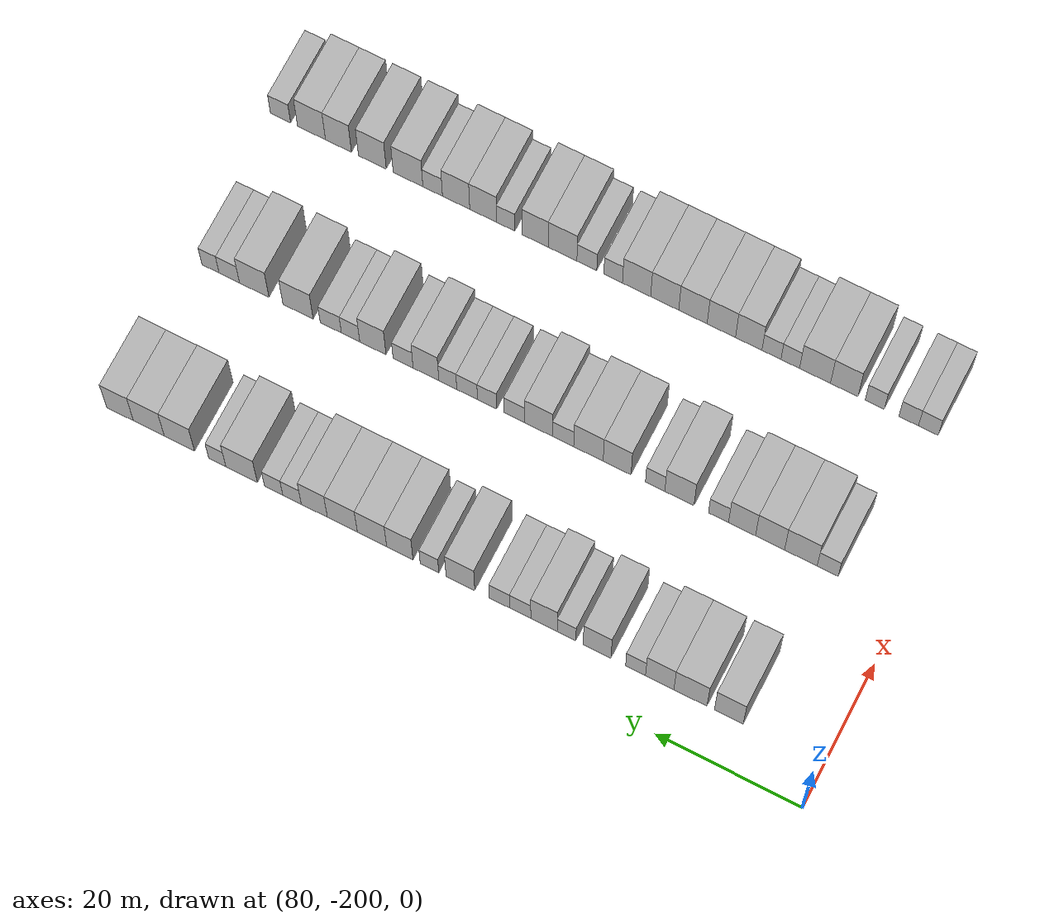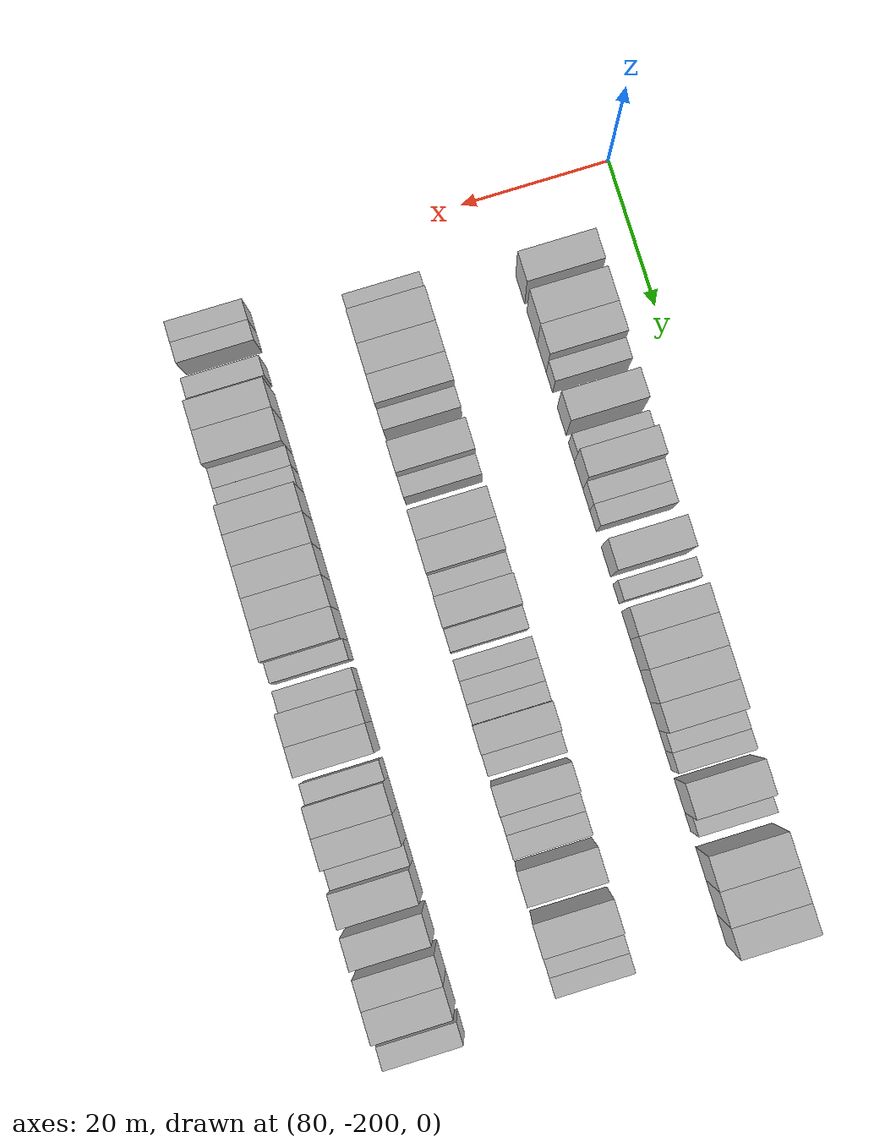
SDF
<sdf version="1.6">
 <world name="default">
  <model name="building_618">
   <static>1</static>
   <pose>91.0000 -187.0635 0 0.000000 0.000000 0.000000</pose>
   <link name="link">
    <pose>0 0 4.50 0 0 0</pose>
    <collision name="collision"><geometry><box><size>10.0000 3.8999 9.0000</size></box></geometry></collision>
    <visual name="visual">
     <cast_shadows>0</cast_shadows>
     <geometry><box><size>10.0000 3.8999 9.0000</size></box></geometry>
     <material>
      <script>
       <uri>model://HANNAS_wall/materials/scripts</uri>
       <uri>model://HANNAS_wall/materials/textures</uri>
       <name>vrc/HANNAS_wall</name>
      </script>
     </material>
    </visual>
   </link>
  </model>
  <model name="building_619">
   <static>1</static>
   <pose>91.0000 -181.8645 0 0.000000 0.000000 0.000000</pose>
   <link name="link">
    <pose>0 0 4.50 0 0 0</pose>
    <collision name="collision"><geometry><box><size>10.0000 4.4981 9.0000</size></box></geometry></collision>
    <visual name="visual">
     <cast_shadows>0</cast_shadows>
     <geometry><box><size>10.0000 4.4981 9.0000</size></box></geometry>
     <material>
      <script>
       <uri>model://HANNAS_wall/materials/scripts</uri>
       <uri>model://HANNAS_wall/materials/textures</uri>
       <name>vrc/HANNAS_wall</name>
      </script>
     </material>
    </visual>
   </link>
  </model>
  <model name="building_620">
   <static>1</static>
   <pose>91.0000 -177.6820 0 0.000000 0.000000 0.000000</pose>
   <link name="link">
    <pose>0 0 4.50 0 0 0</pose>
    <collision name="collision"><geometry><box><size>10.0000 3.8669 9.0000</size></box></geometry></collision>
    <visual name="visual">
     <cast_shadows>0</cast_shadows>
     <geometry><box><size>10.0000 3.8669 9.0000</size></box></geometry>
     <material>
      <script>
       <uri>model://HANNAS_wall/materials/scripts</uri>
       <uri>model://HANNAS_wall/materials/textures</uri>
       <name>vrc/HANNAS_wall</name>
      </script>
     </material>
    </visual>
   </link>
  </model>
  <model name="building_621">
   <static>1</static>
   <pose>91.0000 -174.3899 0 0.000000 0.000000 0.000000</pose>
   <link name="link">
    <pose>0 0 3.00 0 0 0</pose>
    <collision name="collision"><geometry><box><size>10.0000 2.7173 6.0000</size></box></geometry></collision>
    <visual name="visual">
     <cast_shadows>0</cast_shadows>
     <geometry><box><size>10.0000 2.7173 6.0000</size></box></geometry>
     <material>
      <script>
       <uri>model://HANNAS_wall/materials/scripts</uri>
       <uri>model://HANNAS_wall/materials/textures</uri>
       <name>vrc/HANNAS_wall</name>
      </script>
     </material>
    </visual>
   </link>
  </model>
  <model name="building_622">
   <static>1</static>
   <pose>91.0000 -169.1279 0 0.000000 0.000000 0.000000</pose>
   <link name="link">
    <pose>0 0 4.50 0 0 0</pose>
    <collision name="collision"><geometry><box><size>10.0000 3.8067 9.0000</size></box></geometry></collision>
    <visual name="visual">
     <cast_shadows>0</cast_shadows>
     <geometry><box><size>10.0000 3.8067 9.0000</size></box></geometry>
     <material>
      <script>
       <uri>model://HANNAS_wall/materials/scripts</uri>
       <uri>model://HANNAS_wall/materials/textures</uri>
       <name>vrc/HANNAS_wall</name>
      </script>
     </material>
    </visual>
   </link>
  </model>
  <model name="building_623">
   <static>1</static>
   <pose>91.0000 -164.9439 0 0.000000 0.000000 0.000000</pose>
   <link name="link">
    <pose>0 0 3.00 0 0 0</pose>
    <collision name="collision"><geometry><box><size>10.0000 2.5615 6.0000</size></box></geometry></collision>
    <visual name="visual">
     <cast_shadows>0</cast_shadows>
     <geometry><box><size>10.0000 2.5615 6.0000</size></box></geometry>
     <material>
      <script>
       <uri>model://HANNAS_wall/materials/scripts</uri>
       <uri>model://HANNAS_wall/materials/textures</uri>
       <name>vrc/HANNAS_wall</name>
      </script>
     </material>
    </visual>
   </link>
  </model>
  <model name="building_624">
   <static>1</static>
   <pose>91.0000 -161.8504 0 0.000000 0.000000 0.000000</pose>
   <link name="link">
    <pose>0 0 4.50 0 0 0</pose>
    <collision name="collision"><geometry><box><size>10.0000 3.6255 9.0000</size></box></geometry></collision>
    <visual name="visual">
     <cast_shadows>0</cast_shadows>
     <geometry><box><size>10.0000 3.6255 9.0000</size></box></geometry>
     <material>
      <script>
       <uri>model://HANNAS_wall/materials/scripts</uri>
       <uri>model://HANNAS_wall/materials/textures</uri>
       <name>vrc/HANNAS_wall</name>
      </script>
     </material>
    </visual>
   </link>
  </model>
  <model name="building_625">
   <static>1</static>
   <pose>91.0000 -158.5801 0 0.000000 0.000000 0.000000</pose>
   <link name="link">
    <pose>0 0 3.00 0 0 0</pose>
    <collision name="collision"><geometry><box><size>10.0000 2.9150 6.0000</size></box></geometry></collision>
    <visual name="visual">
     <cast_shadows>0</cast_shadows>
     <geometry><box><size>10.0000 2.9150 6.0000</size></box></geometry>
     <material>
      <script>
       <uri>model://HANNAS_wall/materials/scripts</uri>
       <uri>model://HANNAS_wall/materials/textures</uri>
       <name>vrc/HANNAS_wall</name>
      </script>
     </material>
    </visual>
   </link>
  </model>
  <model name="building_626">
   <static>1</static>
   <pose>91.0000 -155.7202 0 0.000000 0.000000 0.000000</pose>
   <link name="link">
    <pose>0 0 3.00 0 0 0</pose>
    <collision name="collision"><geometry><box><size>10.0000 2.8049 6.0000</size></box></geometry></collision>
    <visual name="visual">
     <cast_shadows>0</cast_shadows>
     <geometry><box><size>10.0000 2.8049 6.0000</size></box></geometry>
     <material>
      <script>
       <uri>model://HANNAS_wall/materials/scripts</uri>
       <uri>model://HANNAS_wall/materials/textures</uri>
       <name>vrc/HANNAS_wall</name>
      </script>
     </material>
    </visual>
   </link>
  </model>
  <model name="building_627">
   <static>1</static>
   <pose>91.0000 -150.3310 0 0.000000 0.000000 0.000000</pose>
   <link name="link">
    <pose>0 0 4.50 0 0 0</pose>
    <collision name="collision"><geometry><box><size>10.0000 3.9735 9.0000</size></box></geometry></collision>
    <visual name="visual">
     <cast_shadows>0</cast_shadows>
     <geometry><box><size>10.0000 3.9735 9.0000</size></box></geometry>
     <material>
      <script>
       <uri>model://HANNAS_wall/materials/scripts</uri>
       <uri>model://HANNAS_wall/materials/textures</uri>
       <name>vrc/HANNAS_wall</name>
      </script>
     </material>
    </visual>
   </link>
  </model>
  <model name="building_628">
   <static>1</static>
   <pose>91.0000 -146.0537 0 0.000000 0.000000 0.000000</pose>
   <link name="link">
    <pose>0 0 3.00 0 0 0</pose>
    <collision name="collision"><geometry><box><size>10.0000 2.5809 6.0000</size></box></geometry></collision>
    <visual name="visual">
     <cast_shadows>0</cast_shadows>
     <geometry><box><size>10.0000 2.5809 6.0000</size></box></geometry>
     <material>
      <script>
       <uri>model://HANNAS_wall/materials/scripts</uri>
       <uri>model://HANNAS_wall/materials/textures</uri>
       <name>vrc/HANNAS_wall</name>
      </script>
     </material>
    </visual>
   </link>
  </model>
  <model name="building_629">
   <static>1</static>
   <pose>91.0000 -141.9299 0 0.000000 0.000000 0.000000</pose>
   <link name="link">
    <pose>0 0 4.50 0 0 0</pose>
    <collision name="collision"><geometry><box><size>10.0000 3.6668 9.0000</size></box></geometry></collision>
    <visual name="visual">
     <cast_shadows>0</cast_shadows>
     <geometry><box><size>10.0000 3.6668 9.0000</size></box></geometry>
     <material>
      <script>
       <uri>model://HANNAS_wall/materials/scripts</uri>
       <uri>model://HANNAS_wall/materials/textures</uri>
       <name>vrc/HANNAS_wall</name>
      </script>
     </material>
    </visual>
   </link>
  </model>
  <model name="building_630">
   <static>1</static>
   <pose>91.0000 -138.0539 0 0.000000 0.000000 0.000000</pose>
   <link name="link">
    <pose>0 0 4.50 0 0 0</pose>
    <collision name="collision"><geometry><box><size>10.0000 4.0852 9.0000</size></box></geometry></collision>
    <visual name="visual">
     <cast_shadows>0</cast_shadows>
     <geometry><box><size>10.0000 4.0852 9.0000</size></box></geometry>
     <material>
      <script>
       <uri>model://HANNAS_wall/materials/scripts</uri>
       <uri>model://HANNAS_wall/materials/textures</uri>
       <name>vrc/HANNAS_wall</name>
      </script>
     </material>
    </visual>
   </link>
  </model>
  <model name="building_631">
   <static>1</static>
   <pose>91.0000 -133.9187 0 0.000000 0.000000 0.000000</pose>
   <link name="link">
    <pose>0 0 4.50 0 0 0</pose>
    <collision name="collision"><geometry><box><size>10.0000 4.1851 9.0000</size></box></geometry></collision>
    <visual name="visual">
     <cast_shadows>0</cast_shadows>
     <geometry><box><size>10.0000 4.1851 9.0000</size></box></geometry>
     <material>
      <script>
       <uri>model://HANNAS_wall/materials/scripts</uri>
       <uri>model://HANNAS_wall/materials/textures</uri>
       <name>vrc/HANNAS_wall</name>
      </script>
     </material>
    </visual>
   </link>
  </model>
  <model name="building_632">
   <static>1</static>
   <pose>91.0000 -130.0012 0 0.000000 0.000000 0.000000</pose>
   <link name="link">
    <pose>0 0 4.50 0 0 0</pose>
    <collision name="collision"><geometry><box><size>10.0000 3.6498 9.0000</size></box></geometry></collision>
    <visual name="visual">
     <cast_shadows>0</cast_shadows>
     <geometry><box><size>10.0000 3.6498 9.0000</size></box></geometry>
     <material>
      <script>
       <uri>model://HANNAS_wall/materials/scripts</uri>
       <uri>model://HANNAS_wall/materials/textures</uri>
       <name>vrc/HANNAS_wall</name>
      </script>
     </material>
    </visual>
   </link>
  </model>
  <model name="building_633">
   <static>1</static>
   <pose>91.0000 -126.8754 0 0.000000 0.000000 0.000000</pose>
   <link name="link">
    <pose>0 0 3.00 0 0 0</pose>
    <collision name="collision"><geometry><box><size>10.0000 2.6018 6.0000</size></box></geometry></collision>
    <visual name="visual">
     <cast_shadows>0</cast_shadows>
     <geometry><box><size>10.0000 2.6018 6.0000</size></box></geometry>
     <material>
      <script>
       <uri>model://HANNAS_wall/materials/scripts</uri>
       <uri>model://HANNAS_wall/materials/textures</uri>
       <name>vrc/HANNAS_wall</name>
      </script>
     </material>
    </visual>
   </link>
  </model>
  <model name="building_634">
   <static>1</static>
   <pose>91.0000 -124.2934 0 0.000000 0.000000 0.000000</pose>
   <link name="link">
    <pose>0 0 3.00 0 0 0</pose>
    <collision name="collision"><geometry><box><size>10.0000 2.5622 6.0000</size></box></geometry></collision>
    <visual name="visual">
     <cast_shadows>0</cast_shadows>
     <geometry><box><size>10.0000 2.5622 6.0000</size></box></geometry>
     <material>
      <script>
       <uri>model://HANNAS_wall/materials/scripts</uri>
       <uri>model://HANNAS_wall/materials/textures</uri>
       <name>vrc/HANNAS_wall</name>
      </script>
     </material>
    </visual>
   </link>
  </model>
  <model name="building_635">
   <static>1</static>
   <pose>91.0000 -119.7942 0 0.000000 0.000000 0.000000</pose>
   <link name="link">
    <pose>0 0 4.50 0 0 0</pose>
    <collision name="collision"><geometry><box><size>10.0000 4.4363 9.0000</size></box></geometry></collision>
    <visual name="visual">
     <cast_shadows>0</cast_shadows>
     <geometry><box><size>10.0000 4.4363 9.0000</size></box></geometry>
     <material>
      <script>
       <uri>model://HANNAS_wall/materials/scripts</uri>
       <uri>model://HANNAS_wall/materials/textures</uri>
       <name>vrc/HANNAS_wall</name>
      </script>
     </material>
    </visual>
   </link>
  </model>
  <model name="building_636">
   <static>1</static>
   <pose>91.0000 -116.3647 0 0.000000 0.000000 0.000000</pose>
   <link name="link">
    <pose>0 0 3.00 0 0 0</pose>
    <collision name="collision"><geometry><box><size>10.0000 2.4227 6.0000</size></box></geometry></collision>
    <visual name="visual">
     <cast_shadows>0</cast_shadows>
     <geometry><box><size>10.0000 2.4227 6.0000</size></box></geometry>
     <material>
      <script>
       <uri>model://HANNAS_wall/materials/scripts</uri>
       <uri>model://HANNAS_wall/materials/textures</uri>
       <name>vrc/HANNAS_wall</name>
      </script>
     </material>
    </visual>
   </link>
  </model>
  <model name="building_637">
   <static>1</static>
   <pose>91.0000 -111.0157 0 0.000000 0.000000 0.000000</pose>
   <link name="link">
    <pose>0 0 4.50 0 0 0</pose>
    <collision name="collision"><geometry><box><size>10.0000 4.2753 9.0000</size></box></geometry></collision>
    <visual name="visual">
     <cast_shadows>0</cast_shadows>
     <geometry><box><size>10.0000 4.2753 9.0000</size></box></geometry>
     <material>
      <script>
       <uri>model://HANNAS_wall/materials/scripts</uri>
       <uri>model://HANNAS_wall/materials/textures</uri>
       <name>vrc/HANNAS_wall</name>
      </script>
     </material>
    </visual>
   </link>
  </model>
  <model name="building_638">
   <static>1</static>
   <pose>91.0000 -106.6909 0 0.000000 0.000000 0.000000</pose>
   <link name="link">
    <pose>0 0 4.50 0 0 0</pose>
    <collision name="collision"><geometry><box><size>10.0000 4.3743 9.0000</size></box></geometry></collision>
    <visual name="visual">
     <cast_shadows>0</cast_shadows>
     <geometry><box><size>10.0000 4.3743 9.0000</size></box></geometry>
     <material>
      <script>
       <uri>model://HANNAS_wall/materials/scripts</uri>
       <uri>model://HANNAS_wall/materials/textures</uri>
       <name>vrc/HANNAS_wall</name>
      </script>
     </material>
    </visual>
   </link>
  </model>
  <model name="building_639">
   <static>1</static>
   <pose>91.0000 -102.5994 0 0.000000 0.000000 0.000000</pose>
   <link name="link">
    <pose>0 0 4.50 0 0 0</pose>
    <collision name="collision"><geometry><box><size>10.0000 3.8086 9.0000</size></box></geometry></collision>
    <visual name="visual">
     <cast_shadows>0</cast_shadows>
     <geometry><box><size>10.0000 3.8086 9.0000</size></box></geometry>
     <material>
      <script>
       <uri>model://HANNAS_wall/materials/scripts</uri>
       <uri>model://HANNAS_wall/materials/textures</uri>
       <name>vrc/HANNAS_wall</name>
      </script>
     </material>
    </visual>
   </link>
  </model>
  <model name="building_803">
   <static>1</static>
   <pose>113.0000 -189.7195 0 0.000000 0.000000 0.000000</pose>
   <link name="link">
    <pose>0 0 3.00 0 0 0</pose>
    <collision name="collision"><geometry><box><size>10.0000 2.8651 6.0000</size></box></geometry></collision>
    <visual name="visual">
     <cast_shadows>0</cast_shadows>
     <geometry><box><size>10.0000 2.8651 6.0000</size></box></geometry>
     <material>
      <script>
       <uri>model://HANNAS_wall/materials/scripts</uri>
       <uri>model://HANNAS_wall/materials/textures</uri>
       <name>vrc/HANNAS_wall</name>
      </script>
     </material>
    </visual>
   </link>
  </model>
  <model name="building_804">
   <static>1</static>
   <pose>113.0000 -186.0520 0 0.000000 0.000000 0.000000</pose>
   <link name="link">
    <pose>0 0 4.50 0 0 0</pose>
    <collision name="collision"><geometry><box><size>10.0000 4.4698 9.0000</size></box></geometry></collision>
    <visual name="visual">
     <cast_shadows>0</cast_shadows>
     <geometry><box><size>10.0000 4.4698 9.0000</size></box></geometry>
     <material>
      <script>
       <uri>model://HANNAS_wall/materials/scripts</uri>
       <uri>model://HANNAS_wall/materials/textures</uri>
       <name>vrc/HANNAS_wall</name>
      </script>
     </material>
    </visual>
   </link>
  </model>
  <model name="building_805">
   <static>1</static>
   <pose>113.0000 -181.8278 0 0.000000 0.000000 0.000000</pose>
   <link name="link">
    <pose>0 0 4.50 0 0 0</pose>
    <collision name="collision"><geometry><box><size>10.0000 3.9787 9.0000</size></box></geometry></collision>
    <visual name="visual">
     <cast_shadows>0</cast_shadows>
     <geometry><box><size>10.0000 3.9787 9.0000</size></box></geometry>
     <material>
      <script>
       <uri>model://HANNAS_wall/materials/scripts</uri>
       <uri>model://HANNAS_wall/materials/textures</uri>
       <name>vrc/HANNAS_wall</name>
      </script>
     </material>
    </visual>
   </link>
  </model>
  <model name="building_806">
   <static>1</static>
   <pose>113.0000 -177.9813 0 0.000000 0.000000 0.000000</pose>
   <link name="link">
    <pose>0 0 4.50 0 0 0</pose>
    <collision name="collision"><geometry><box><size>10.0000 3.7142 9.0000</size></box></geometry></collision>
    <visual name="visual">
     <cast_shadows>0</cast_shadows>
     <geometry><box><size>10.0000 3.7142 9.0000</size></box></geometry>
     <material>
      <script>
       <uri>model://HANNAS_wall/materials/scripts</uri>
       <uri>model://HANNAS_wall/materials/textures</uri>
       <name>vrc/HANNAS_wall</name>
      </script>
     </material>
    </visual>
   </link>
  </model>
  <model name="building_807">
   <static>1</static>
   <pose>113.0000 -174.7506 0 0.000000 0.000000 0.000000</pose>
   <link name="link">
    <pose>0 0 3.00 0 0 0</pose>
    <collision name="collision"><geometry><box><size>10.0000 2.7471 6.0000</size></box></geometry></collision>
    <visual name="visual">
     <cast_shadows>0</cast_shadows>
     <geometry><box><size>10.0000 2.7471 6.0000</size></box></geometry>
     <material>
      <script>
       <uri>model://HANNAS_wall/materials/scripts</uri>
       <uri>model://HANNAS_wall/materials/textures</uri>
       <name>vrc/HANNAS_wall</name>
      </script>
     </material>
    </visual>
   </link>
  </model>
  <model name="building_808">
   <static>1</static>
   <pose>113.0000 -169.3579 0 0.000000 0.000000 0.000000</pose>
   <link name="link">
    <pose>0 0 4.50 0 0 0</pose>
    <collision name="collision"><geometry><box><size>10.0000 4.0383 9.0000</size></box></geometry></collision>
    <visual name="visual">
     <cast_shadows>0</cast_shadows>
     <geometry><box><size>10.0000 4.0383 9.0000</size></box></geometry>
     <material>
      <script>
       <uri>model://HANNAS_wall/materials/scripts</uri>
       <uri>model://HANNAS_wall/materials/textures</uri>
       <name>vrc/HANNAS_wall</name>
      </script>
     </material>
    </visual>
   </link>
  </model>
  <model name="building_809">
   <static>1</static>
   <pose>113.0000 -166.0016 0 0.000000 0.000000 0.000000</pose>
   <link name="link">
    <pose>0 0 3.00 0 0 0</pose>
    <collision name="collision"><geometry><box><size>10.0000 2.6744 6.0000</size></box></geometry></collision>
    <visual name="visual">
     <cast_shadows>0</cast_shadows>
     <geometry><box><size>10.0000 2.6744 6.0000</size></box></geometry>
     <material>
      <script>
       <uri>model://HANNAS_wall/materials/scripts</uri>
       <uri>model://HANNAS_wall/materials/textures</uri>
       <name>vrc/HANNAS_wall</name>
      </script>
     </material>
    </visual>
   </link>
  </model>
  <model name="building_810">
   <static>1</static>
   <pose>113.0000 -160.7313 0 0.000000 0.000000 0.000000</pose>
   <link name="link">
    <pose>0 0 4.50 0 0 0</pose>
    <collision name="collision"><geometry><box><size>10.0000 3.8661 9.0000</size></box></geometry></collision>
    <visual name="visual">
     <cast_shadows>0</cast_shadows>
     <geometry><box><size>10.0000 3.8661 9.0000</size></box></geometry>
     <material>
      <script>
       <uri>model://HANNAS_wall/materials/scripts</uri>
       <uri>model://HANNAS_wall/materials/textures</uri>
       <name>vrc/HANNAS_wall</name>
      </script>
     </material>
    </visual>
   </link>
  </model>
  <model name="building_811">
   <static>1</static>
   <pose>113.0000 -156.7494 0 0.000000 0.000000 0.000000</pose>
   <link name="link">
    <pose>0 0 4.50 0 0 0</pose>
    <collision name="collision"><geometry><box><size>10.0000 4.0977 9.0000</size></box></geometry></collision>
    <visual name="visual">
     <cast_shadows>0</cast_shadows>
     <geometry><box><size>10.0000 4.0977 9.0000</size></box></geometry>
     <material>
      <script>
       <uri>model://HANNAS_wall/materials/scripts</uri>
       <uri>model://HANNAS_wall/materials/textures</uri>
       <name>vrc/HANNAS_wall</name>
      </script>
     </material>
    </visual>
   </link>
  </model>
  <model name="building_812">
   <static>1</static>
   <pose>113.0000 -153.2311 0 0.000000 0.000000 0.000000</pose>
   <link name="link">
    <pose>0 0 3.00 0 0 0</pose>
    <collision name="collision"><geometry><box><size>10.0000 2.9390 6.0000</size></box></geometry></collision>
    <visual name="visual">
     <cast_shadows>0</cast_shadows>
     <geometry><box><size>10.0000 2.9390 6.0000</size></box></geometry>
     <material>
      <script>
       <uri>model://HANNAS_wall/materials/scripts</uri>
       <uri>model://HANNAS_wall/materials/textures</uri>
       <name>vrc/HANNAS_wall</name>
      </script>
     </material>
    </visual>
   </link>
  </model>
  <model name="building_813">
   <static>1</static>
   <pose>113.0000 -149.8077 0 0.000000 0.000000 0.000000</pose>
   <link name="link">
    <pose>0 0 4.50 0 0 0</pose>
    <collision name="collision"><geometry><box><size>10.0000 3.9078 9.0000</size></box></geometry></collision>
    <visual name="visual">
     <cast_shadows>0</cast_shadows>
     <geometry><box><size>10.0000 3.9078 9.0000</size></box></geometry>
     <material>
      <script>
       <uri>model://HANNAS_wall/materials/scripts</uri>
       <uri>model://HANNAS_wall/materials/textures</uri>
       <name>vrc/HANNAS_wall</name>
      </script>
     </material>
    </visual>
   </link>
  </model>
  <model name="building_814">
   <static>1</static>
   <pose>113.0000 -146.4039 0 0.000000 0.000000 0.000000</pose>
   <link name="link">
    <pose>0 0 3.00 0 0 0</pose>
    <collision name="collision"><geometry><box><size>10.0000 2.8996 6.0000</size></box></geometry></collision>
    <visual name="visual">
     <cast_shadows>0</cast_shadows>
     <geometry><box><size>10.0000 2.8996 6.0000</size></box></geometry>
     <material>
      <script>
       <uri>model://HANNAS_wall/materials/scripts</uri>
       <uri>model://HANNAS_wall/materials/textures</uri>
       <name>vrc/HANNAS_wall</name>
      </script>
     </material>
    </visual>
   </link>
  </model>
  <model name="building_815">
   <static>1</static>
   <pose>113.0000 -142.6046 0 0.000000 0.000000 0.000000</pose>
   <link name="link">
    <pose>0 0 3.00 0 0 0</pose>
    <collision name="collision"><geometry><box><size>10.0000 2.6990 6.0000</size></box></geometry></collision>
    <visual name="visual">
     <cast_shadows>0</cast_shadows>
     <geometry><box><size>10.0000 2.6990 6.0000</size></box></geometry>
     <material>
      <script>
       <uri>model://HANNAS_wall/materials/scripts</uri>
       <uri>model://HANNAS_wall/materials/textures</uri>
       <name>vrc/HANNAS_wall</name>
      </script>
     </material>
    </visual>
   </link>
  </model>
  <model name="building_816">
   <static>1</static>
   <pose>113.0000 -139.7965 0 0.000000 0.000000 0.000000</pose>
   <link name="link">
    <pose>0 0 3.00 0 0 0</pose>
    <collision name="collision"><geometry><box><size>10.0000 2.9173 6.0000</size></box></geometry></collision>
    <visual name="visual">
     <cast_shadows>0</cast_shadows>
     <geometry><box><size>10.0000 2.9173 6.0000</size></box></geometry>
     <material>
      <script>
       <uri>model://HANNAS_wall/materials/scripts</uri>
       <uri>model://HANNAS_wall/materials/textures</uri>
       <name>vrc/HANNAS_wall</name>
      </script>
     </material>
    </visual>
   </link>
  </model>
  <model name="building_817">
   <static>1</static>
   <pose>113.0000 -137.0816 0 0.000000 0.000000 0.000000</pose>
   <link name="link">
    <pose>0 0 3.00 0 0 0</pose>
    <collision name="collision"><geometry><box><size>10.0000 2.5125 6.0000</size></box></geometry></collision>
    <visual name="visual">
     <cast_shadows>0</cast_shadows>
     <geometry><box><size>10.0000 2.5125 6.0000</size></box></geometry>
     <material>
      <script>
       <uri>model://HANNAS_wall/materials/scripts</uri>
       <uri>model://HANNAS_wall/materials/textures</uri>
       <name>vrc/HANNAS_wall</name>
      </script>
     </material>
    </visual>
   </link>
  </model>
  <model name="building_818">
   <static>1</static>
   <pose>113.0000 -134.0122 0 0.000000 0.000000 0.000000</pose>
   <link name="link">
    <pose>0 0 4.50 0 0 0</pose>
    <collision name="collision"><geometry><box><size>10.0000 3.6263 9.0000</size></box></geometry></collision>
    <visual name="visual">
     <cast_shadows>0</cast_shadows>
     <geometry><box><size>10.0000 3.6263 9.0000</size></box></geometry>
     <material>
      <script>
       <uri>model://HANNAS_wall/materials/scripts</uri>
       <uri>model://HANNAS_wall/materials/textures</uri>
       <name>vrc/HANNAS_wall</name>
      </script>
     </material>
    </visual>
   </link>
  </model>
  <model name="building_819">
   <static>1</static>
   <pose>113.0000 -130.7864 0 0.000000 0.000000 0.000000</pose>
   <link name="link">
    <pose>0 0 3.00 0 0 0</pose>
    <collision name="collision"><geometry><box><size>10.0000 2.8252 6.0000</size></box></geometry></collision>
    <visual name="visual">
     <cast_shadows>0</cast_shadows>
     <geometry><box><size>10.0000 2.8252 6.0000</size></box></geometry>
     <material>
      <script>
       <uri>model://HANNAS_wall/materials/scripts</uri>
       <uri>model://HANNAS_wall/materials/textures</uri>
       <name>vrc/HANNAS_wall</name>
      </script>
     </material>
    </visual>
   </link>
  </model>
  <model name="building_820">
   <static>1</static>
   <pose>113.0000 -126.5130 0 0.000000 0.000000 0.000000</pose>
   <link name="link">
    <pose>0 0 4.50 0 0 0</pose>
    <collision name="collision"><geometry><box><size>10.0000 3.7215 9.0000</size></box></geometry></collision>
    <visual name="visual">
     <cast_shadows>0</cast_shadows>
     <geometry><box><size>10.0000 3.7215 9.0000</size></box></geometry>
     <material>
      <script>
       <uri>model://HANNAS_wall/materials/scripts</uri>
       <uri>model://HANNAS_wall/materials/textures</uri>
       <name>vrc/HANNAS_wall</name>
      </script>
     </material>
    </visual>
   </link>
  </model>
  <model name="building_821">
   <static>1</static>
   <pose>113.0000 -123.3494 0 0.000000 0.000000 0.000000</pose>
   <link name="link">
    <pose>0 0 3.00 0 0 0</pose>
    <collision name="collision"><geometry><box><size>10.0000 2.6057 6.0000</size></box></geometry></collision>
    <visual name="visual">
     <cast_shadows>0</cast_shadows>
     <geometry><box><size>10.0000 2.6057 6.0000</size></box></geometry>
     <material>
      <script>
       <uri>model://HANNAS_wall/materials/scripts</uri>
       <uri>model://HANNAS_wall/materials/textures</uri>
       <name>vrc/HANNAS_wall</name>
      </script>
     </material>
    </visual>
   </link>
  </model>
  <model name="building_822">
   <static>1</static>
   <pose>113.0000 -120.5483 0 0.000000 0.000000 0.000000</pose>
   <link name="link">
    <pose>0 0 3.00 0 0 0</pose>
    <collision name="collision"><geometry><box><size>10.0000 2.9965 6.0000</size></box></geometry></collision>
    <visual name="visual">
     <cast_shadows>0</cast_shadows>
     <geometry><box><size>10.0000 2.9965 6.0000</size></box></geometry>
     <material>
      <script>
       <uri>model://HANNAS_wall/materials/scripts</uri>
       <uri>model://HANNAS_wall/materials/textures</uri>
       <name>vrc/HANNAS_wall</name>
      </script>
     </material>
    </visual>
   </link>
  </model>
  <model name="building_823">
   <static>1</static>
   <pose>113.0000 -115.8959 0 0.000000 0.000000 0.000000</pose>
   <link name="link">
    <pose>0 0 4.50 0 0 0</pose>
    <collision name="collision"><geometry><box><size>10.0000 4.3082 9.0000</size></box></geometry></collision>
    <visual name="visual">
     <cast_shadows>0</cast_shadows>
     <geometry><box><size>10.0000 4.3082 9.0000</size></box></geometry>
     <material>
      <script>
       <uri>model://HANNAS_wall/materials/scripts</uri>
       <uri>model://HANNAS_wall/materials/textures</uri>
       <name>vrc/HANNAS_wall</name>
      </script>
     </material>
    </visual>
   </link>
  </model>
  <model name="building_824">
   <static>1</static>
   <pose>113.0000 -109.6327 0 0.000000 0.000000 0.000000</pose>
   <link name="link">
    <pose>0 0 4.50 0 0 0</pose>
    <collision name="collision"><geometry><box><size>10.0000 4.2183 9.0000</size></box></geometry></collision>
    <visual name="visual">
     <cast_shadows>0</cast_shadows>
     <geometry><box><size>10.0000 4.2183 9.0000</size></box></geometry>
     <material>
      <script>
       <uri>model://HANNAS_wall/materials/scripts</uri>
       <uri>model://HANNAS_wall/materials/textures</uri>
       <name>vrc/HANNAS_wall</name>
      </script>
     </material>
    </visual>
   </link>
  </model>
  <model name="building_825">
   <static>1</static>
   <pose>113.0000 -106.0621 0 0.000000 0.000000 0.000000</pose>
   <link name="link">
    <pose>0 0 3.00 0 0 0</pose>
    <collision name="collision"><geometry><box><size>10.0000 2.9229 6.0000</size></box></geometry></collision>
    <visual name="visual">
     <cast_shadows>0</cast_shadows>
     <geometry><box><size>10.0000 2.9229 6.0000</size></box></geometry>
     <material>
      <script>
       <uri>model://HANNAS_wall/materials/scripts</uri>
       <uri>model://HANNAS_wall/materials/textures</uri>
       <name>vrc/HANNAS_wall</name>
      </script>
     </material>
    </visual>
   </link>
  </model>
  <model name="building_826">
   <static>1</static>
   <pose>113.0000 -103.3707 0 0.000000 0.000000 0.000000</pose>
   <link name="link">
    <pose>0 0 3.00 0 0 0</pose>
    <collision name="collision"><geometry><box><size>10.0000 2.4599 6.0000</size></box></geometry></collision>
    <visual name="visual">
     <cast_shadows>0</cast_shadows>
     <geometry><box><size>10.0000 2.4599 6.0000</size></box></geometry>
     <material>
      <script>
       <uri>model://HANNAS_wall/materials/scripts</uri>
       <uri>model://HANNAS_wall/materials/textures</uri>
       <name>vrc/HANNAS_wall</name>
      </script>
     </material>
    </visual>
   </link>
  </model>
  <model name="building_990">
   <static>1</static>
   <pose>135.0000 -192.9317 0 0.000000 0.000000 0.000000</pose>
   <link name="link">
    <pose>0 0 3.00 0 0 0</pose>
    <collision name="collision"><geometry><box><size>10.0000 2.7180 6.0000</size></box></geometry></collision>
    <visual name="visual">
     <cast_shadows>0</cast_shadows>
     <geometry><box><size>10.0000 2.7180 6.0000</size></box></geometry>
     <material>
      <script>
       <uri>model://HANNAS_wall/materials/scripts</uri>
       <uri>model://HANNAS_wall/materials/textures</uri>
       <name>vrc/HANNAS_wall</name>
      </script>
     </material>
    </visual>
   </link>
  </model>
  <model name="building_991">
   <static>1</static>
   <pose>135.0000 -190.2215 0 0.000000 0.000000 0.000000</pose>
   <link name="link">
    <pose>0 0 3.00 0 0 0</pose>
    <collision name="collision"><geometry><box><size>10.0000 2.7025 6.0000</size></box></geometry></collision>
    <visual name="visual">
     <cast_shadows>0</cast_shadows>
     <geometry><box><size>10.0000 2.7025 6.0000</size></box></geometry>
     <material>
      <script>
       <uri>model://HANNAS_wall/materials/scripts</uri>
       <uri>model://HANNAS_wall/materials/textures</uri>
       <name>vrc/HANNAS_wall</name>
      </script>
     </material>
    </visual>
   </link>
  </model>
  <model name="building_992">
   <static>1</static>
   <pose>135.0000 -185.5479 0 0.000000 0.000000 0.000000</pose>
   <link name="link">
    <pose>0 0 3.00 0 0 0</pose>
    <collision name="collision"><geometry><box><size>10.0000 2.6447 6.0000</size></box></geometry></collision>
    <visual name="visual">
     <cast_shadows>0</cast_shadows>
     <geometry><box><size>10.0000 2.6447 6.0000</size></box></geometry>
     <material>
      <script>
       <uri>model://HANNAS_wall/materials/scripts</uri>
       <uri>model://HANNAS_wall/materials/textures</uri>
       <name>vrc/HANNAS_wall</name>
      </script>
     </material>
    </visual>
   </link>
  </model>
  <model name="building_993">
   <static>1</static>
   <pose>135.0000 -181.3235 0 0.000000 0.000000 0.000000</pose>
   <link name="link">
    <pose>0 0 4.50 0 0 0</pose>
    <collision name="collision"><geometry><box><size>10.0000 3.8039 9.0000</size></box></geometry></collision>
    <visual name="visual">
     <cast_shadows>0</cast_shadows>
     <geometry><box><size>10.0000 3.8039 9.0000</size></box></geometry>
     <material>
      <script>
       <uri>model://HANNAS_wall/materials/scripts</uri>
       <uri>model://HANNAS_wall/materials/textures</uri>
       <name>vrc/HANNAS_wall</name>
      </script>
     </material>
    </visual>
   </link>
  </model>
  <model name="building_994">
   <static>1</static>
   <pose>135.0000 -177.2751 0 0.000000 0.000000 0.000000</pose>
   <link name="link">
    <pose>0 0 4.50 0 0 0</pose>
    <collision name="collision"><geometry><box><size>10.0000 4.2930 9.0000</size></box></geometry></collision>
    <visual name="visual">
     <cast_shadows>0</cast_shadows>
     <geometry><box><size>10.0000 4.2930 9.0000</size></box></geometry>
     <material>
      <script>
       <uri>model://HANNAS_wall/materials/scripts</uri>
       <uri>model://HANNAS_wall/materials/textures</uri>
       <name>vrc/HANNAS_wall</name>
      </script>
     </material>
    </visual>
   </link>
  </model>
  <model name="building_995">
   <static>1</static>
   <pose>135.0000 -173.8377 0 0.000000 0.000000 0.000000</pose>
   <link name="link">
    <pose>0 0 3.00 0 0 0</pose>
    <collision name="collision"><geometry><box><size>10.0000 2.5818 6.0000</size></box></geometry></collision>
    <visual name="visual">
     <cast_shadows>0</cast_shadows>
     <geometry><box><size>10.0000 2.5818 6.0000</size></box></geometry>
     <material>
      <script>
       <uri>model://HANNAS_wall/materials/scripts</uri>
       <uri>model://HANNAS_wall/materials/textures</uri>
       <name>vrc/HANNAS_wall</name>
      </script>
     </material>
    </visual>
   </link>
  </model>
  <model name="building_996">
   <static>1</static>
   <pose>135.0000 -171.2236 0 0.000000 0.000000 0.000000</pose>
   <link name="link">
    <pose>0 0 3.00 0 0 0</pose>
    <collision name="collision"><geometry><box><size>10.0000 2.6465 6.0000</size></box></geometry></collision>
    <visual name="visual">
     <cast_shadows>0</cast_shadows>
     <geometry><box><size>10.0000 2.6465 6.0000</size></box></geometry>
     <material>
      <script>
       <uri>model://HANNAS_wall/materials/scripts</uri>
       <uri>model://HANNAS_wall/materials/textures</uri>
       <name>vrc/HANNAS_wall</name>
      </script>
     </material>
    </visual>
   </link>
  </model>
  <model name="building_997">
   <static>1</static>
   <pose>135.0000 -168.0565 0 0.000000 0.000000 0.000000</pose>
   <link name="link">
    <pose>0 0 4.50 0 0 0</pose>
    <collision name="collision"><geometry><box><size>10.0000 3.6878 9.0000</size></box></geometry></collision>
    <visual name="visual">
     <cast_shadows>0</cast_shadows>
     <geometry><box><size>10.0000 3.6878 9.0000</size></box></geometry>
     <material>
      <script>
       <uri>model://HANNAS_wall/materials/scripts</uri>
       <uri>model://HANNAS_wall/materials/textures</uri>
       <name>vrc/HANNAS_wall</name>
      </script>
     </material>
    </visual>
   </link>
  </model>
  <model name="building_998">
   <static>1</static>
   <pose>135.0000 -164.2293 0 0.000000 0.000000 0.000000</pose>
   <link name="link">
    <pose>0 0 4.50 0 0 0</pose>
    <collision name="collision"><geometry><box><size>10.0000 3.9666 9.0000</size></box></geometry></collision>
    <visual name="visual">
     <cast_shadows>0</cast_shadows>
     <geometry><box><size>10.0000 3.9666 9.0000</size></box></geometry>
     <material>
      <script>
       <uri>model://HANNAS_wall/materials/scripts</uri>
       <uri>model://HANNAS_wall/materials/textures</uri>
       <name>vrc/HANNAS_wall</name>
      </script>
     </material>
    </visual>
   </link>
  </model>
  <model name="building_999">
   <static>1</static>
   <pose>135.0000 -160.2557 0 0.000000 0.000000 0.000000</pose>
   <link name="link">
    <pose>0 0 4.50 0 0 0</pose>
    <collision name="collision"><geometry><box><size>10.0000 3.9806 9.0000</size></box></geometry></collision>
    <visual name="visual">
     <cast_shadows>0</cast_shadows>
     <geometry><box><size>10.0000 3.9806 9.0000</size></box></geometry>
     <material>
      <script>
       <uri>model://HANNAS_wall/materials/scripts</uri>
       <uri>model://HANNAS_wall/materials/textures</uri>
       <name>vrc/HANNAS_wall</name>
      </script>
     </material>
    </visual>
   </link>
  </model>
  <model name="building_1000">
   <static>1</static>
   <pose>135.0000 -156.2920 0 0.000000 0.000000 0.000000</pose>
   <link name="link">
    <pose>0 0 4.50 0 0 0</pose>
    <collision name="collision"><geometry><box><size>10.0000 3.9469 9.0000</size></box></geometry></collision>
    <visual name="visual">
     <cast_shadows>0</cast_shadows>
     <geometry><box><size>10.0000 3.9469 9.0000</size></box></geometry>
     <material>
      <script>
       <uri>model://HANNAS_wall/materials/scripts</uri>
       <uri>model://HANNAS_wall/materials/textures</uri>
       <name>vrc/HANNAS_wall</name>
      </script>
     </material>
    </visual>
   </link>
  </model>
  <model name="building_1001">
   <static>1</static>
   <pose>135.0000 -152.3364 0 0.000000 0.000000 0.000000</pose>
   <link name="link">
    <pose>0 0 4.50 0 0 0</pose>
    <collision name="collision"><geometry><box><size>10.0000 3.9642 9.0000</size></box></geometry></collision>
    <visual name="visual">
     <cast_shadows>0</cast_shadows>
     <geometry><box><size>10.0000 3.9642 9.0000</size></box></geometry>
     <material>
      <script>
       <uri>model://HANNAS_wall/materials/scripts</uri>
       <uri>model://HANNAS_wall/materials/textures</uri>
       <name>vrc/HANNAS_wall</name>
      </script>
     </material>
    </visual>
   </link>
  </model>
  <model name="building_1002">
   <static>1</static>
   <pose>135.0000 -149.0439 0 0.000000 0.000000 0.000000</pose>
   <link name="link">
    <pose>0 0 3.00 0 0 0</pose>
    <collision name="collision"><geometry><box><size>10.0000 2.6208 6.0000</size></box></geometry></collision>
    <visual name="visual">
     <cast_shadows>0</cast_shadows>
     <geometry><box><size>10.0000 2.6208 6.0000</size></box></geometry>
     <material>
      <script>
       <uri>model://HANNAS_wall/materials/scripts</uri>
       <uri>model://HANNAS_wall/materials/textures</uri>
       <name>vrc/HANNAS_wall</name>
      </script>
     </material>
    </visual>
   </link>
  </model>
  <model name="building_1003">
   <static>1</static>
   <pose>135.0000 -145.3292 0 0.000000 0.000000 0.000000</pose>
   <link name="link">
    <pose>0 0 3.00 0 0 0</pose>
    <collision name="collision"><geometry><box><size>10.0000 2.8086 6.0000</size></box></geometry></collision>
    <visual name="visual">
     <cast_shadows>0</cast_shadows>
     <geometry><box><size>10.0000 2.8086 6.0000</size></box></geometry>
     <material>
      <script>
       <uri>model://HANNAS_wall/materials/scripts</uri>
       <uri>model://HANNAS_wall/materials/textures</uri>
       <name>vrc/HANNAS_wall</name>
      </script>
     </material>
    </visual>
   </link>
  </model>
  <model name="building_1004">
   <static>1</static>
   <pose>135.0000 -141.8873 0 0.000000 0.000000 0.000000</pose>
   <link name="link">
    <pose>0 0 4.50 0 0 0</pose>
    <collision name="collision"><geometry><box><size>10.0000 4.0752 9.0000</size></box></geometry></collision>
    <visual name="visual">
     <cast_shadows>0</cast_shadows>
     <geometry><box><size>10.0000 4.0752 9.0000</size></box></geometry>
     <material>
      <script>
       <uri>model://HANNAS_wall/materials/scripts</uri>
       <uri>model://HANNAS_wall/materials/textures</uri>
       <name>vrc/HANNAS_wall</name>
      </script>
     </material>
    </visual>
   </link>
  </model>
  <model name="building_1005">
   <static>1</static>
   <pose>135.0000 -137.9988 0 0.000000 0.000000 0.000000</pose>
   <link name="link">
    <pose>0 0 4.50 0 0 0</pose>
    <collision name="collision"><geometry><box><size>10.0000 3.7019 9.0000</size></box></geometry></collision>
    <visual name="visual">
     <cast_shadows>0</cast_shadows>
     <geometry><box><size>10.0000 3.7019 9.0000</size></box></geometry>
     <material>
      <script>
       <uri>model://HANNAS_wall/materials/scripts</uri>
       <uri>model://HANNAS_wall/materials/textures</uri>
       <name>vrc/HANNAS_wall</name>
      </script>
     </material>
    </visual>
   </link>
  </model>
  <model name="building_1006">
   <static>1</static>
   <pose>135.0000 -133.8525 0 0.000000 0.000000 0.000000</pose>
   <link name="link">
    <pose>0 0 3.00 0 0 0</pose>
    <collision name="collision"><geometry><box><size>10.0000 2.5908 6.0000</size></box></geometry></collision>
    <visual name="visual">
     <cast_shadows>0</cast_shadows>
     <geometry><box><size>10.0000 2.5908 6.0000</size></box></geometry>
     <material>
      <script>
       <uri>model://HANNAS_wall/materials/scripts</uri>
       <uri>model://HANNAS_wall/materials/textures</uri>
       <name>vrc/HANNAS_wall</name>
      </script>
     </material>
    </visual>
   </link>
  </model>
  <model name="building_1007">
   <static>1</static>
   <pose>135.0000 -130.6358 0 0.000000 0.000000 0.000000</pose>
   <link name="link">
    <pose>0 0 4.50 0 0 0</pose>
    <collision name="collision"><geometry><box><size>10.0000 3.8426 9.0000</size></box></geometry></collision>
    <visual name="visual">
     <cast_shadows>0</cast_shadows>
     <geometry><box><size>10.0000 3.8426 9.0000</size></box></geometry>
     <material>
      <script>
       <uri>model://HANNAS_wall/materials/scripts</uri>
       <uri>model://HANNAS_wall/materials/textures</uri>
       <name>vrc/HANNAS_wall</name>
      </script>
     </material>
    </visual>
   </link>
  </model>
  <model name="building_1008">
   <static>1</static>
   <pose>135.0000 -126.7662 0 0.000000 0.000000 0.000000</pose>
   <link name="link">
    <pose>0 0 4.50 0 0 0</pose>
    <collision name="collision"><geometry><box><size>10.0000 3.8965 9.0000</size></box></geometry></collision>
    <visual name="visual">
     <cast_shadows>0</cast_shadows>
     <geometry><box><size>10.0000 3.8965 9.0000</size></box></geometry>
     <material>
      <script>
       <uri>model://HANNAS_wall/materials/scripts</uri>
       <uri>model://HANNAS_wall/materials/textures</uri>
       <name>vrc/HANNAS_wall</name>
      </script>
     </material>
    </visual>
   </link>
  </model>
  <model name="building_1009">
   <static>1</static>
   <pose>135.0000 -123.4150 0 0.000000 0.000000 0.000000</pose>
   <link name="link">
    <pose>0 0 3.00 0 0 0</pose>
    <collision name="collision"><geometry><box><size>10.0000 2.8059 6.0000</size></box></geometry></collision>
    <visual name="visual">
     <cast_shadows>0</cast_shadows>
     <geometry><box><size>10.0000 2.8059 6.0000</size></box></geometry>
     <material>
      <script>
       <uri>model://HANNAS_wall/materials/scripts</uri>
       <uri>model://HANNAS_wall/materials/textures</uri>
       <name>vrc/HANNAS_wall</name>
      </script>
     </material>
    </visual>
   </link>
  </model>
  <model name="building_1010">
   <static>1</static>
   <pose>135.0000 -119.8895 0 0.000000 0.000000 0.000000</pose>
   <link name="link">
    <pose>0 0 4.50 0 0 0</pose>
    <collision name="collision"><geometry><box><size>10.0000 4.2451 9.0000</size></box></geometry></collision>
    <visual name="visual">
     <cast_shadows>0</cast_shadows>
     <geometry><box><size>10.0000 4.2451 9.0000</size></box></geometry>
     <material>
      <script>
       <uri>model://HANNAS_wall/materials/scripts</uri>
       <uri>model://HANNAS_wall/materials/textures</uri>
       <name>vrc/HANNAS_wall</name>
      </script>
     </material>
    </visual>
   </link>
  </model>
  <model name="building_1011">
   <static>1</static>
   <pose>135.0000 -114.7678 0 0.000000 0.000000 0.000000</pose>
   <link name="link">
    <pose>0 0 4.50 0 0 0</pose>
    <collision name="collision"><geometry><box><size>10.0000 3.9983 9.0000</size></box></geometry></collision>
    <visual name="visual">
     <cast_shadows>0</cast_shadows>
     <geometry><box><size>10.0000 3.9983 9.0000</size></box></geometry>
     <material>
      <script>
       <uri>model://HANNAS_wall/materials/scripts</uri>
       <uri>model://HANNAS_wall/materials/textures</uri>
       <name>vrc/HANNAS_wall</name>
      </script>
     </material>
    </visual>
   </link>
  </model>
  <model name="building_1012">
   <static>1</static>
   <pose>135.0000 -109.8898 0 0.000000 0.000000 0.000000</pose>
   <link name="link">
    <pose>0 0 4.50 0 0 0</pose>
    <collision name="collision"><geometry><box><size>10.0000 3.7578 9.0000</size></box></geometry></collision>
    <visual name="visual">
     <cast_shadows>0</cast_shadows>
     <geometry><box><size>10.0000 3.7578 9.0000</size></box></geometry>
     <material>
      <script>
       <uri>model://HANNAS_wall/materials/scripts</uri>
       <uri>model://HANNAS_wall/materials/textures</uri>
       <name>vrc/HANNAS_wall</name>
      </script>
     </material>
    </visual>
   </link>
  </model>
  <model name="building_1013">
   <static>1</static>
   <pose>135.0000 -106.0007 0 0.000000 0.000000 0.000000</pose>
   <link name="link">
    <pose>0 0 4.50 0 0 0</pose>
    <collision name="collision"><geometry><box><size>10.0000 4.0204 9.0000</size></box></geometry></collision>
    <visual name="visual">
     <cast_shadows>0</cast_shadows>
     <geometry><box><size>10.0000 4.0204 9.0000</size></box></geometry>
     <material>
      <script>
       <uri>model://HANNAS_wall/materials/scripts</uri>
       <uri>model://HANNAS_wall/materials/textures</uri>
       <name>vrc/HANNAS_wall</name>
      </script>
     </material>
    </visual>
   </link>
  </model>
  <model name="building_1014">
   <static>1</static>
   <pose>135.0000 -101.5307 0 0.000000 0.000000 0.000000</pose>
   <link name="link">
    <pose>0 0 3.00 0 0 0</pose>
    <collision name="collision"><geometry><box><size>10.0000 2.9195 6.0000</size></box></geometry></collision>
    <visual name="visual">
     <cast_shadows>0</cast_shadows>
     <geometry><box><size>10.0000 2.9195 6.0000</size></box></geometry>
     <material>
      <script>
       <uri>model://HANNAS_wall/materials/scripts</uri>
       <uri>model://HANNAS_wall/materials/textures</uri>
       <name>vrc/HANNAS_wall</name>
      </script>
     </material>
    </visual>
   </link>
  </model>
 </world>
</sdf>
